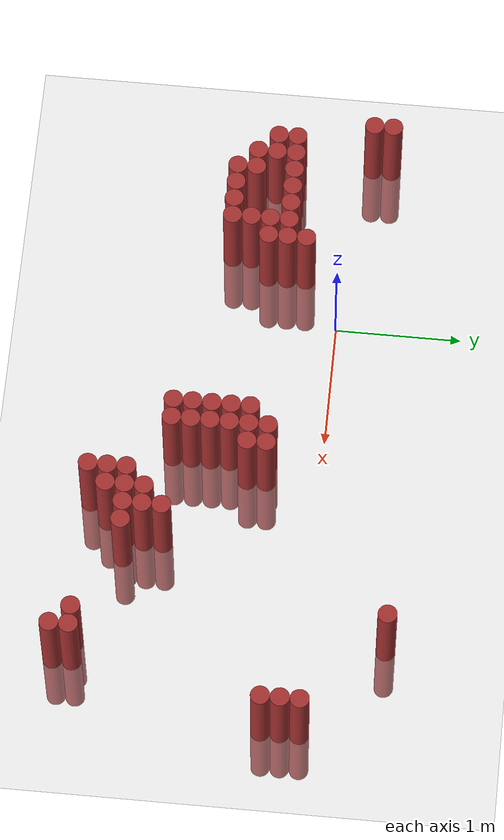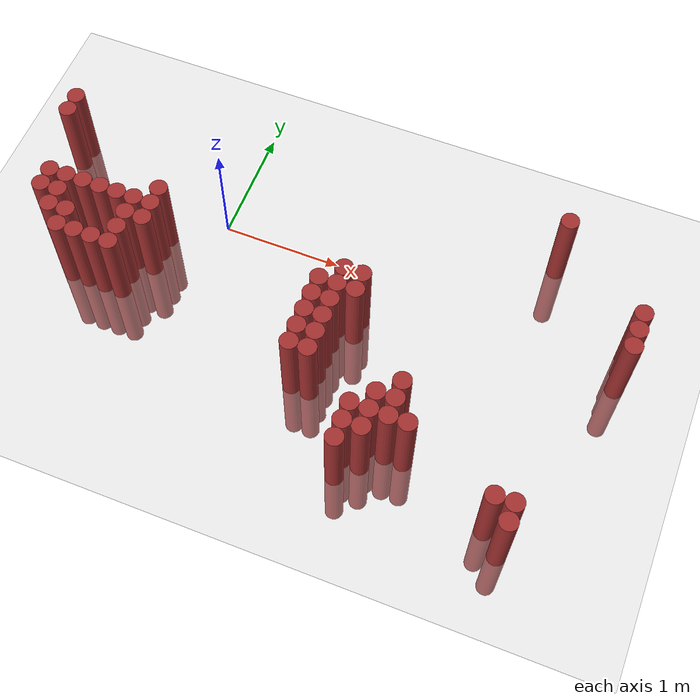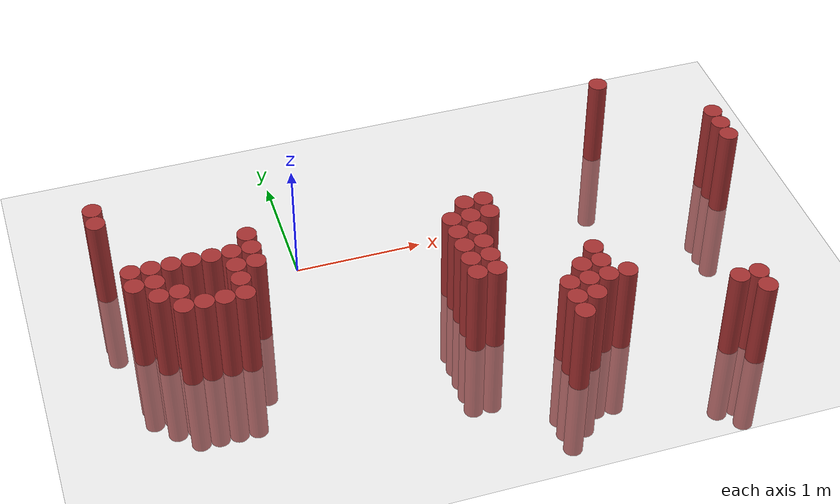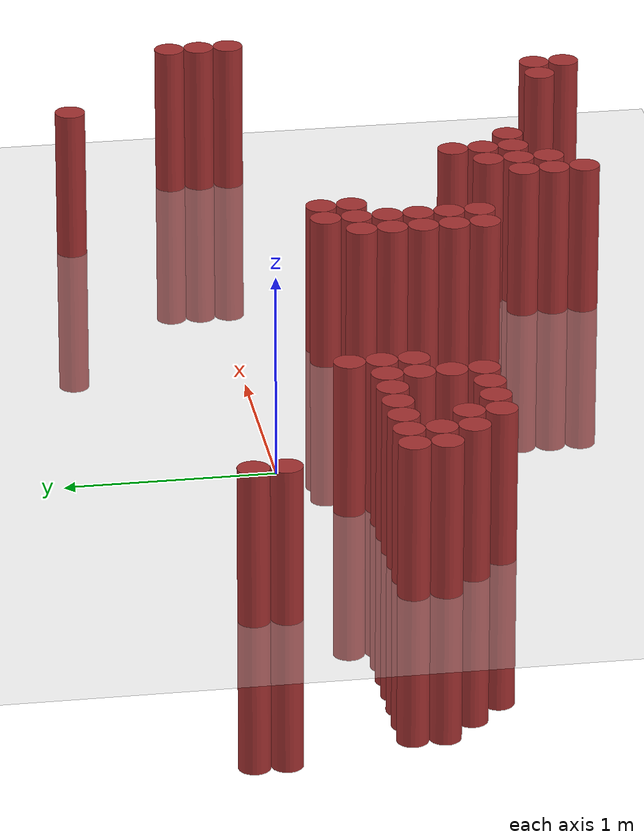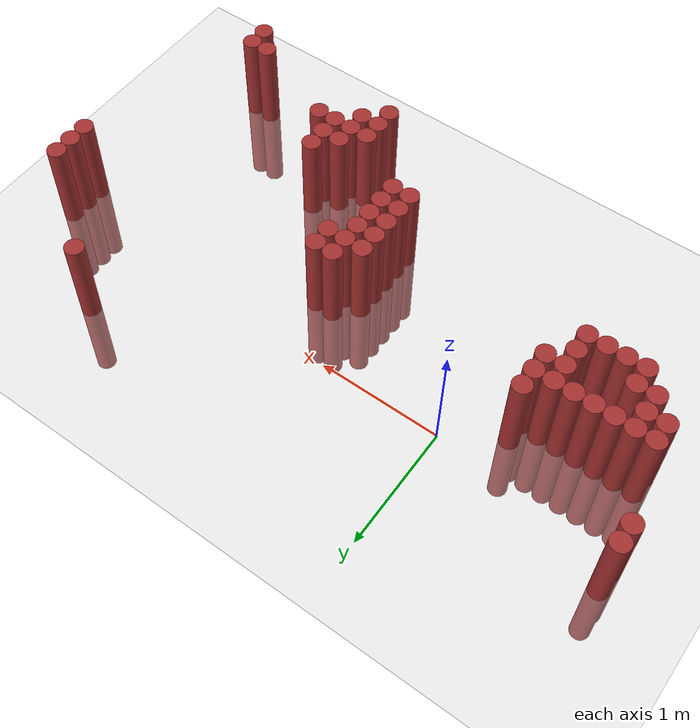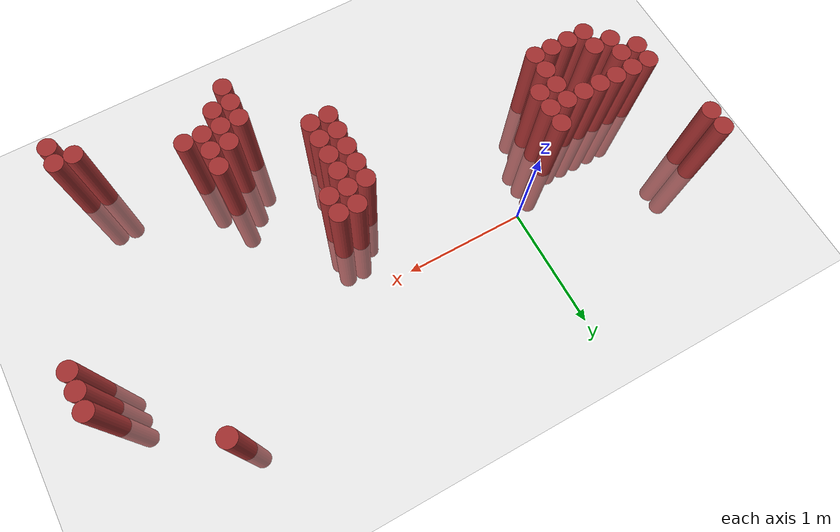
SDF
<sdf version="1.6">
 <world name="default">
  <model name="ground_plane">
   <static>1</static>
   <link name="link">
    <collision name="collision">
     <geometry><plane><normal>0 0 1</normal><size>100 100</size></plane></geometry>
     <surface><friction><ode><mu>100</mu><mu2>50</mu2></ode></friction></surface>
    </collision>
    <visual name="visual">
     <cast_shadows>0</cast_shadows>
     <geometry><plane><normal>0 0 1</normal><size>100 100</size></plane></geometry>
     <material>
      <script><uri>file://media/materials/scripts/gazebo.material</uri><name>Gazebo/Grey</name></script>
     </material>
    </visual>
   </link>
  </model>
  <model name="unit_cylinder_332">
   <static>1</static>
   <pose>-1.475000 0.175000 0.000000 0.000000 0.000000 0.000000</pose>
   <link name="link">
    <inertial>
     <mass>1</mass>
     <inertia><ixx>0.145833</ixx><ixy>0</ixy><ixz>0</ixz><iyy>0.145833</iyy><iyz>0</iyz><izz>0.125</izz></inertia>
    </inertial>
    <collision name="collision">
     <geometry><cylinder><radius>0.075000</radius><length>1.5</length></cylinder></geometry>
    </collision>
    <visual name="visual">
     <geometry><cylinder><radius>0.075000</radius><length>1.5</length></cylinder></geometry>
     <material>
      <ambient>0.648000 0.192000 0.192000 1</ambient>
      <diffuse>0.648000 0.192000 0.192000 1</diffuse>
     </material>
     <material>
      <script><name>Gazebo/Grey</name><uri>file://media/materials/scripts/gazebo.material</uri></script>
     </material>
    </visual>
   </link>
  </model>
  <model name="unit_cylinder_333">
   <static>1</static>
   <pose>-1.475000 0.325000 0.000000 0.000000 0.000000 0.000000</pose>
   <link name="link">
    <inertial>
     <mass>1</mass>
     <inertia><ixx>0.145833</ixx><ixy>0</ixy><ixz>0</ixz><iyy>0.145833</iyy><iyz>0</iyz><izz>0.125</izz></inertia>
    </inertial>
    <collision name="collision">
     <geometry><cylinder><radius>0.075000</radius><length>1.5</length></cylinder></geometry>
    </collision>
    <visual name="visual">
     <geometry><cylinder><radius>0.075000</radius><length>1.5</length></cylinder></geometry>
     <material>
      <ambient>0.648000 0.192000 0.192000 1</ambient>
      <diffuse>0.648000 0.192000 0.192000 1</diffuse>
     </material>
     <material>
      <script><name>Gazebo/Grey</name><uri>file://media/materials/scripts/gazebo.material</uri></script>
     </material>
    </visual>
   </link>
  </model>
  <model name="unit_cylinder_335">
   <static>1</static>
   <pose>-1.325000 -0.575000 0.000000 0.000000 0.000000 0.000000</pose>
   <link name="link">
    <inertial>
     <mass>1</mass>
     <inertia><ixx>0.145833</ixx><ixy>0</ixy><ixz>0</ixz><iyy>0.145833</iyy><iyz>0</iyz><izz>0.125</izz></inertia>
    </inertial>
    <collision name="collision">
     <geometry><cylinder><radius>0.075000</radius><length>1.5</length></cylinder></geometry>
    </collision>
    <visual name="visual">
     <geometry><cylinder><radius>0.075000</radius><length>1.5</length></cylinder></geometry>
     <material>
      <ambient>0.648000 0.192000 0.192000 1</ambient>
      <diffuse>0.648000 0.192000 0.192000 1</diffuse>
     </material>
     <material>
      <script><name>Gazebo/Grey</name><uri>file://media/materials/scripts/gazebo.material</uri></script>
     </material>
    </visual>
   </link>
  </model>
  <model name="unit_cylinder_336">
   <static>1</static>
   <pose>-1.325000 -0.425000 0.000000 0.000000 0.000000 0.000000</pose>
   <link name="link">
    <inertial>
     <mass>1</mass>
     <inertia><ixx>0.145833</ixx><ixy>0</ixy><ixz>0</ixz><iyy>0.145833</iyy><iyz>0</iyz><izz>0.125</izz></inertia>
    </inertial>
    <collision name="collision">
     <geometry><cylinder><radius>0.075000</radius><length>1.5</length></cylinder></geometry>
    </collision>
    <visual name="visual">
     <geometry><cylinder><radius>0.075000</radius><length>1.5</length></cylinder></geometry>
     <material>
      <ambient>0.648000 0.192000 0.192000 1</ambient>
      <diffuse>0.648000 0.192000 0.192000 1</diffuse>
     </material>
     <material>
      <script><name>Gazebo/Grey</name><uri>file://media/materials/scripts/gazebo.material</uri></script>
     </material>
    </visual>
   </link>
  </model>
  <model name="unit_cylinder_337">
   <static>1</static>
   <pose>-1.175000 -0.725000 0.000000 0.000000 0.000000 0.000000</pose>
   <link name="link">
    <inertial>
     <mass>1</mass>
     <inertia><ixx>0.145833</ixx><ixy>0</ixy><ixz>0</ixz><iyy>0.145833</iyy><iyz>0</iyz><izz>0.125</izz></inertia>
    </inertial>
    <collision name="collision">
     <geometry><cylinder><radius>0.075000</radius><length>1.5</length></cylinder></geometry>
    </collision>
    <visual name="visual">
     <geometry><cylinder><radius>0.075000</radius><length>1.5</length></cylinder></geometry>
     <material>
      <ambient>0.648000 0.192000 0.192000 1</ambient>
      <diffuse>0.648000 0.192000 0.192000 1</diffuse>
     </material>
     <material>
      <script><name>Gazebo/Grey</name><uri>file://media/materials/scripts/gazebo.material</uri></script>
     </material>
    </visual>
   </link>
  </model>
  <model name="unit_cylinder_338">
   <static>1</static>
   <pose>-1.175000 -0.575000 0.000000 0.000000 0.000000 0.000000</pose>
   <link name="link">
    <inertial>
     <mass>1</mass>
     <inertia><ixx>0.145833</ixx><ixy>0</ixy><ixz>0</ixz><iyy>0.145833</iyy><iyz>0</iyz><izz>0.125</izz></inertia>
    </inertial>
    <collision name="collision">
     <geometry><cylinder><radius>0.075000</radius><length>1.5</length></cylinder></geometry>
    </collision>
    <visual name="visual">
     <geometry><cylinder><radius>0.075000</radius><length>1.5</length></cylinder></geometry>
     <material>
      <ambient>0.648000 0.192000 0.192000 1</ambient>
      <diffuse>0.648000 0.192000 0.192000 1</diffuse>
     </material>
     <material>
      <script><name>Gazebo/Grey</name><uri>file://media/materials/scripts/gazebo.material</uri></script>
     </material>
    </visual>
   </link>
  </model>
  <model name="unit_cylinder_339">
   <static>1</static>
   <pose>-1.175000 -0.425000 0.000000 0.000000 0.000000 0.000000</pose>
   <link name="link">
    <inertial>
     <mass>1</mass>
     <inertia><ixx>0.145833</ixx><ixy>0</ixy><ixz>0</ixz><iyy>0.145833</iyy><iyz>0</iyz><izz>0.125</izz></inertia>
    </inertial>
    <collision name="collision">
     <geometry><cylinder><radius>0.075000</radius><length>1.5</length></cylinder></geometry>
    </collision>
    <visual name="visual">
     <geometry><cylinder><radius>0.075000</radius><length>1.5</length></cylinder></geometry>
     <material>
      <ambient>0.648000 0.192000 0.192000 1</ambient>
      <diffuse>0.648000 0.192000 0.192000 1</diffuse>
     </material>
     <material>
      <script><name>Gazebo/Grey</name><uri>file://media/materials/scripts/gazebo.material</uri></script>
     </material>
    </visual>
   </link>
  </model>
  <model name="unit_cylinder_340">
   <static>1</static>
   <pose>-1.025000 -0.875000 0.000000 0.000000 0.000000 0.000000</pose>
   <link name="link">
    <inertial>
     <mass>1</mass>
     <inertia><ixx>0.145833</ixx><ixy>0</ixy><ixz>0</ixz><iyy>0.145833</iyy><iyz>0</iyz><izz>0.125</izz></inertia>
    </inertial>
    <collision name="collision">
     <geometry><cylinder><radius>0.075000</radius><length>1.5</length></cylinder></geometry>
    </collision>
    <visual name="visual">
     <geometry><cylinder><radius>0.075000</radius><length>1.5</length></cylinder></geometry>
     <material>
      <ambient>0.648000 0.192000 0.192000 1</ambient>
      <diffuse>0.648000 0.192000 0.192000 1</diffuse>
     </material>
     <material>
      <script><name>Gazebo/Grey</name><uri>file://media/materials/scripts/gazebo.material</uri></script>
     </material>
    </visual>
   </link>
  </model>
  <model name="unit_cylinder_341">
   <static>1</static>
   <pose>-1.025000 -0.725000 0.000000 0.000000 0.000000 0.000000</pose>
   <link name="link">
    <inertial>
     <mass>1</mass>
     <inertia><ixx>0.145833</ixx><ixy>0</ixy><ixz>0</ixz><iyy>0.145833</iyy><iyz>0</iyz><izz>0.125</izz></inertia>
    </inertial>
    <collision name="collision">
     <geometry><cylinder><radius>0.075000</radius><length>1.5</length></cylinder></geometry>
    </collision>
    <visual name="visual">
     <geometry><cylinder><radius>0.075000</radius><length>1.5</length></cylinder></geometry>
     <material>
      <ambient>0.648000 0.192000 0.192000 1</ambient>
      <diffuse>0.648000 0.192000 0.192000 1</diffuse>
     </material>
     <material>
      <script><name>Gazebo/Grey</name><uri>file://media/materials/scripts/gazebo.material</uri></script>
     </material>
    </visual>
   </link>
  </model>
  <model name="unit_cylinder_342">
   <static>1</static>
   <pose>-1.025000 -0.425000 0.000000 0.000000 0.000000 0.000000</pose>
   <link name="link">
    <inertial>
     <mass>1</mass>
     <inertia><ixx>0.145833</ixx><ixy>0</ixy><ixz>0</ixz><iyy>0.145833</iyy><iyz>0</iyz><izz>0.125</izz></inertia>
    </inertial>
    <collision name="collision">
     <geometry><cylinder><radius>0.075000</radius><length>1.5</length></cylinder></geometry>
    </collision>
    <visual name="visual">
     <geometry><cylinder><radius>0.075000</radius><length>1.5</length></cylinder></geometry>
     <material>
      <ambient>0.648000 0.192000 0.192000 1</ambient>
      <diffuse>0.648000 0.192000 0.192000 1</diffuse>
     </material>
     <material>
      <script><name>Gazebo/Grey</name><uri>file://media/materials/scripts/gazebo.material</uri></script>
     </material>
    </visual>
   </link>
  </model>
  <model name="unit_cylinder_343">
   <static>1</static>
   <pose>-0.875000 -0.875000 0.000000 0.000000 0.000000 0.000000</pose>
   <link name="link">
    <inertial>
     <mass>1</mass>
     <inertia><ixx>0.145833</ixx><ixy>0</ixy><ixz>0</ixz><iyy>0.145833</iyy><iyz>0</iyz><izz>0.125</izz></inertia>
    </inertial>
    <collision name="collision">
     <geometry><cylinder><radius>0.075000</radius><length>1.5</length></cylinder></geometry>
    </collision>
    <visual name="visual">
     <geometry><cylinder><radius>0.075000</radius><length>1.5</length></cylinder></geometry>
     <material>
      <ambient>0.648000 0.192000 0.192000 1</ambient>
      <diffuse>0.648000 0.192000 0.192000 1</diffuse>
     </material>
     <material>
      <script><name>Gazebo/Grey</name><uri>file://media/materials/scripts/gazebo.material</uri></script>
     </material>
    </visual>
   </link>
  </model>
  <model name="unit_cylinder_344">
   <static>1</static>
   <pose>-0.875000 -0.425000 0.000000 0.000000 0.000000 0.000000</pose>
   <link name="link">
    <inertial>
     <mass>1</mass>
     <inertia><ixx>0.145833</ixx><ixy>0</ixy><ixz>0</ixz><iyy>0.145833</iyy><iyz>0</iyz><izz>0.125</izz></inertia>
    </inertial>
    <collision name="collision">
     <geometry><cylinder><radius>0.075000</radius><length>1.5</length></cylinder></geometry>
    </collision>
    <visual name="visual">
     <geometry><cylinder><radius>0.075000</radius><length>1.5</length></cylinder></geometry>
     <material>
      <ambient>0.648000 0.192000 0.192000 1</ambient>
      <diffuse>0.648000 0.192000 0.192000 1</diffuse>
     </material>
     <material>
      <script><name>Gazebo/Grey</name><uri>file://media/materials/scripts/gazebo.material</uri></script>
     </material>
    </visual>
   </link>
  </model>
  <model name="unit_cylinder_345">
   <static>1</static>
   <pose>-0.725000 -0.875000 0.000000 0.000000 0.000000 0.000000</pose>
   <link name="link">
    <inertial>
     <mass>1</mass>
     <inertia><ixx>0.145833</ixx><ixy>0</ixy><ixz>0</ixz><iyy>0.145833</iyy><iyz>0</iyz><izz>0.125</izz></inertia>
    </inertial>
    <collision name="collision">
     <geometry><cylinder><radius>0.075000</radius><length>1.5</length></cylinder></geometry>
    </collision>
    <visual name="visual">
     <geometry><cylinder><radius>0.075000</radius><length>1.5</length></cylinder></geometry>
     <material>
      <ambient>0.648000 0.192000 0.192000 1</ambient>
      <diffuse>0.648000 0.192000 0.192000 1</diffuse>
     </material>
     <material>
      <script><name>Gazebo/Grey</name><uri>file://media/materials/scripts/gazebo.material</uri></script>
     </material>
    </visual>
   </link>
  </model>
  <model name="unit_cylinder_346">
   <static>1</static>
   <pose>-0.725000 -0.425000 0.000000 0.000000 0.000000 0.000000</pose>
   <link name="link">
    <inertial>
     <mass>1</mass>
     <inertia><ixx>0.145833</ixx><ixy>0</ixy><ixz>0</ixz><iyy>0.145833</iyy><iyz>0</iyz><izz>0.125</izz></inertia>
    </inertial>
    <collision name="collision">
     <geometry><cylinder><radius>0.075000</radius><length>1.5</length></cylinder></geometry>
    </collision>
    <visual name="visual">
     <geometry><cylinder><radius>0.075000</radius><length>1.5</length></cylinder></geometry>
     <material>
      <ambient>0.648000 0.192000 0.192000 1</ambient>
      <diffuse>0.648000 0.192000 0.192000 1</diffuse>
     </material>
     <material>
      <script><name>Gazebo/Grey</name><uri>file://media/materials/scripts/gazebo.material</uri></script>
     </material>
    </visual>
   </link>
  </model>
  <model name="unit_cylinder_347">
   <static>1</static>
   <pose>-0.575000 -0.875000 0.000000 0.000000 0.000000 0.000000</pose>
   <link name="link">
    <inertial>
     <mass>1</mass>
     <inertia><ixx>0.145833</ixx><ixy>0</ixy><ixz>0</ixz><iyy>0.145833</iyy><iyz>0</iyz><izz>0.125</izz></inertia>
    </inertial>
    <collision name="collision">
     <geometry><cylinder><radius>0.075000</radius><length>1.5</length></cylinder></geometry>
    </collision>
    <visual name="visual">
     <geometry><cylinder><radius>0.075000</radius><length>1.5</length></cylinder></geometry>
     <material>
      <ambient>0.648000 0.192000 0.192000 1</ambient>
      <diffuse>0.648000 0.192000 0.192000 1</diffuse>
     </material>
     <material>
      <script><name>Gazebo/Grey</name><uri>file://media/materials/scripts/gazebo.material</uri></script>
     </material>
    </visual>
   </link>
  </model>
  <model name="unit_cylinder_348">
   <static>1</static>
   <pose>-0.575000 -0.725000 0.000000 0.000000 0.000000 0.000000</pose>
   <link name="link">
    <inertial>
     <mass>1</mass>
     <inertia><ixx>0.145833</ixx><ixy>0</ixy><ixz>0</ixz><iyy>0.145833</iyy><iyz>0</iyz><izz>0.125</izz></inertia>
    </inertial>
    <collision name="collision">
     <geometry><cylinder><radius>0.075000</radius><length>1.5</length></cylinder></geometry>
    </collision>
    <visual name="visual">
     <geometry><cylinder><radius>0.075000</radius><length>1.5</length></cylinder></geometry>
     <material>
      <ambient>0.648000 0.192000 0.192000 1</ambient>
      <diffuse>0.648000 0.192000 0.192000 1</diffuse>
     </material>
     <material>
      <script><name>Gazebo/Grey</name><uri>file://media/materials/scripts/gazebo.material</uri></script>
     </material>
    </visual>
   </link>
  </model>
  <model name="unit_cylinder_349">
   <static>1</static>
   <pose>-0.575000 -0.575000 0.000000 0.000000 0.000000 0.000000</pose>
   <link name="link">
    <inertial>
     <mass>1</mass>
     <inertia><ixx>0.145833</ixx><ixy>0</ixy><ixz>0</ixz><iyy>0.145833</iyy><iyz>0</iyz><izz>0.125</izz></inertia>
    </inertial>
    <collision name="collision">
     <geometry><cylinder><radius>0.075000</radius><length>1.5</length></cylinder></geometry>
    </collision>
    <visual name="visual">
     <geometry><cylinder><radius>0.075000</radius><length>1.5</length></cylinder></geometry>
     <material>
      <ambient>0.648000 0.192000 0.192000 1</ambient>
      <diffuse>0.648000 0.192000 0.192000 1</diffuse>
     </material>
     <material>
      <script><name>Gazebo/Grey</name><uri>file://media/materials/scripts/gazebo.material</uri></script>
     </material>
    </visual>
   </link>
  </model>
  <model name="unit_cylinder_350">
   <static>1</static>
   <pose>-0.575000 -0.425000 0.000000 0.000000 0.000000 0.000000</pose>
   <link name="link">
    <inertial>
     <mass>1</mass>
     <inertia><ixx>0.145833</ixx><ixy>0</ixy><ixz>0</ixz><iyy>0.145833</iyy><iyz>0</iyz><izz>0.125</izz></inertia>
    </inertial>
    <collision name="collision">
     <geometry><cylinder><radius>0.075000</radius><length>1.5</length></cylinder></geometry>
    </collision>
    <visual name="visual">
     <geometry><cylinder><radius>0.075000</radius><length>1.5</length></cylinder></geometry>
     <material>
      <ambient>0.648000 0.192000 0.192000 1</ambient>
      <diffuse>0.648000 0.192000 0.192000 1</diffuse>
     </material>
     <material>
      <script><name>Gazebo/Grey</name><uri>file://media/materials/scripts/gazebo.material</uri></script>
     </material>
    </visual>
   </link>
  </model>
  <model name="unit_cylinder_351">
   <static>1</static>
   <pose>-0.425000 -0.575000 0.000000 0.000000 0.000000 0.000000</pose>
   <link name="link">
    <inertial>
     <mass>1</mass>
     <inertia><ixx>0.145833</ixx><ixy>0</ixy><ixz>0</ixz><iyy>0.145833</iyy><iyz>0</iyz><izz>0.125</izz></inertia>
    </inertial>
    <collision name="collision">
     <geometry><cylinder><radius>0.075000</radius><length>1.5</length></cylinder></geometry>
    </collision>
    <visual name="visual">
     <geometry><cylinder><radius>0.075000</radius><length>1.5</length></cylinder></geometry>
     <material>
      <ambient>0.648000 0.192000 0.192000 1</ambient>
      <diffuse>0.648000 0.192000 0.192000 1</diffuse>
     </material>
     <material>
      <script><name>Gazebo/Grey</name><uri>file://media/materials/scripts/gazebo.material</uri></script>
     </material>
    </visual>
   </link>
  </model>
  <model name="unit_cylinder_352">
   <static>1</static>
   <pose>-0.425000 -0.425000 0.000000 0.000000 0.000000 0.000000</pose>
   <link name="link">
    <inertial>
     <mass>1</mass>
     <inertia><ixx>0.145833</ixx><ixy>0</ixy><ixz>0</ixz><iyy>0.145833</iyy><iyz>0</iyz><izz>0.125</izz></inertia>
    </inertial>
    <collision name="collision">
     <geometry><cylinder><radius>0.075000</radius><length>1.5</length></cylinder></geometry>
    </collision>
    <visual name="visual">
     <geometry><cylinder><radius>0.075000</radius><length>1.5</length></cylinder></geometry>
     <material>
      <ambient>0.648000 0.192000 0.192000 1</ambient>
      <diffuse>0.648000 0.192000 0.192000 1</diffuse>
     </material>
     <material>
      <script><name>Gazebo/Grey</name><uri>file://media/materials/scripts/gazebo.material</uri></script>
     </material>
    </visual>
   </link>
  </model>
  <model name="unit_cylinder_353">
   <static>1</static>
   <pose>-0.425000 -0.275000 0.000000 0.000000 0.000000 0.000000</pose>
   <link name="link">
    <inertial>
     <mass>1</mass>
     <inertia><ixx>0.145833</ixx><ixy>0</ixy><ixz>0</ixz><iyy>0.145833</iyy><iyz>0</iyz><izz>0.125</izz></inertia>
    </inertial>
    <collision name="collision">
     <geometry><cylinder><radius>0.075000</radius><length>1.5</length></cylinder></geometry>
    </collision>
    <visual name="visual">
     <geometry><cylinder><radius>0.075000</radius><length>1.5</length></cylinder></geometry>
     <material>
      <ambient>0.648000 0.192000 0.192000 1</ambient>
      <diffuse>0.648000 0.192000 0.192000 1</diffuse>
     </material>
     <material>
      <script><name>Gazebo/Grey</name><uri>file://media/materials/scripts/gazebo.material</uri></script>
     </material>
    </visual>
   </link>
  </model>
  <model name="unit_cylinder_361">
   <static>1</static>
   <pose>1.075000 -1.175000 0.000000 0.000000 0.000000 0.000000</pose>
   <link name="link">
    <inertial>
     <mass>1</mass>
     <inertia><ixx>0.145833</ixx><ixy>0</ixy><ixz>0</ixz><iyy>0.145833</iyy><iyz>0</iyz><izz>0.125</izz></inertia>
    </inertial>
    <collision name="collision">
     <geometry><cylinder><radius>0.075000</radius><length>1.5</length></cylinder></geometry>
    </collision>
    <visual name="visual">
     <geometry><cylinder><radius>0.075000</radius><length>1.5</length></cylinder></geometry>
     <material>
      <ambient>0.648000 0.192000 0.192000 1</ambient>
      <diffuse>0.648000 0.192000 0.192000 1</diffuse>
     </material>
     <material>
      <script><name>Gazebo/Grey</name><uri>file://media/materials/scripts/gazebo.material</uri></script>
     </material>
    </visual>
   </link>
  </model>
  <model name="unit_cylinder_362">
   <static>1</static>
   <pose>1.075000 -1.025000 0.000000 0.000000 0.000000 0.000000</pose>
   <link name="link">
    <inertial>
     <mass>1</mass>
     <inertia><ixx>0.145833</ixx><ixy>0</ixy><ixz>0</ixz><iyy>0.145833</iyy><iyz>0</iyz><izz>0.125</izz></inertia>
    </inertial>
    <collision name="collision">
     <geometry><cylinder><radius>0.075000</radius><length>1.5</length></cylinder></geometry>
    </collision>
    <visual name="visual">
     <geometry><cylinder><radius>0.075000</radius><length>1.5</length></cylinder></geometry>
     <material>
      <ambient>0.648000 0.192000 0.192000 1</ambient>
      <diffuse>0.648000 0.192000 0.192000 1</diffuse>
     </material>
     <material>
      <script><name>Gazebo/Grey</name><uri>file://media/materials/scripts/gazebo.material</uri></script>
     </material>
    </visual>
   </link>
  </model>
  <model name="unit_cylinder_363">
   <static>1</static>
   <pose>1.075000 -0.875000 0.000000 0.000000 0.000000 0.000000</pose>
   <link name="link">
    <inertial>
     <mass>1</mass>
     <inertia><ixx>0.145833</ixx><ixy>0</ixy><ixz>0</ixz><iyy>0.145833</iyy><iyz>0</iyz><izz>0.125</izz></inertia>
    </inertial>
    <collision name="collision">
     <geometry><cylinder><radius>0.075000</radius><length>1.5</length></cylinder></geometry>
    </collision>
    <visual name="visual">
     <geometry><cylinder><radius>0.075000</radius><length>1.5</length></cylinder></geometry>
     <material>
      <ambient>0.648000 0.192000 0.192000 1</ambient>
      <diffuse>0.648000 0.192000 0.192000 1</diffuse>
     </material>
     <material>
      <script><name>Gazebo/Grey</name><uri>file://media/materials/scripts/gazebo.material</uri></script>
     </material>
    </visual>
   </link>
  </model>
  <model name="unit_cylinder_364">
   <static>1</static>
   <pose>1.075000 -0.725000 0.000000 0.000000 0.000000 0.000000</pose>
   <link name="link">
    <inertial>
     <mass>1</mass>
     <inertia><ixx>0.145833</ixx><ixy>0</ixy><ixz>0</ixz><iyy>0.145833</iyy><iyz>0</iyz><izz>0.125</izz></inertia>
    </inertial>
    <collision name="collision">
     <geometry><cylinder><radius>0.075000</radius><length>1.5</length></cylinder></geometry>
    </collision>
    <visual name="visual">
     <geometry><cylinder><radius>0.075000</radius><length>1.5</length></cylinder></geometry>
     <material>
      <ambient>0.648000 0.192000 0.192000 1</ambient>
      <diffuse>0.648000 0.192000 0.192000 1</diffuse>
     </material>
     <material>
      <script><name>Gazebo/Grey</name><uri>file://media/materials/scripts/gazebo.material</uri></script>
     </material>
    </visual>
   </link>
  </model>
  <model name="unit_cylinder_365">
   <static>1</static>
   <pose>1.075000 -0.575000 0.000000 0.000000 0.000000 0.000000</pose>
   <link name="link">
    <inertial>
     <mass>1</mass>
     <inertia><ixx>0.145833</ixx><ixy>0</ixy><ixz>0</ixz><iyy>0.145833</iyy><iyz>0</iyz><izz>0.125</izz></inertia>
    </inertial>
    <collision name="collision">
     <geometry><cylinder><radius>0.075000</radius><length>1.5</length></cylinder></geometry>
    </collision>
    <visual name="visual">
     <geometry><cylinder><radius>0.075000</radius><length>1.5</length></cylinder></geometry>
     <material>
      <ambient>0.648000 0.192000 0.192000 1</ambient>
      <diffuse>0.648000 0.192000 0.192000 1</diffuse>
     </material>
     <material>
      <script><name>Gazebo/Grey</name><uri>file://media/materials/scripts/gazebo.material</uri></script>
     </material>
    </visual>
   </link>
  </model>
  <model name="unit_cylinder_369">
   <static>1</static>
   <pose>1.225000 -1.175000 0.000000 0.000000 0.000000 0.000000</pose>
   <link name="link">
    <inertial>
     <mass>1</mass>
     <inertia><ixx>0.145833</ixx><ixy>0</ixy><ixz>0</ixz><iyy>0.145833</iyy><iyz>0</iyz><izz>0.125</izz></inertia>
    </inertial>
    <collision name="collision">
     <geometry><cylinder><radius>0.075000</radius><length>1.5</length></cylinder></geometry>
    </collision>
    <visual name="visual">
     <geometry><cylinder><radius>0.075000</radius><length>1.5</length></cylinder></geometry>
     <material>
      <ambient>0.648000 0.192000 0.192000 1</ambient>
      <diffuse>0.648000 0.192000 0.192000 1</diffuse>
     </material>
     <material>
      <script><name>Gazebo/Grey</name><uri>file://media/materials/scripts/gazebo.material</uri></script>
     </material>
    </visual>
   </link>
  </model>
  <model name="unit_cylinder_370">
   <static>1</static>
   <pose>1.225000 -1.025000 0.000000 0.000000 0.000000 0.000000</pose>
   <link name="link">
    <inertial>
     <mass>1</mass>
     <inertia><ixx>0.145833</ixx><ixy>0</ixy><ixz>0</ixz><iyy>0.145833</iyy><iyz>0</iyz><izz>0.125</izz></inertia>
    </inertial>
    <collision name="collision">
     <geometry><cylinder><radius>0.075000</radius><length>1.5</length></cylinder></geometry>
    </collision>
    <visual name="visual">
     <geometry><cylinder><radius>0.075000</radius><length>1.5</length></cylinder></geometry>
     <material>
      <ambient>0.648000 0.192000 0.192000 1</ambient>
      <diffuse>0.648000 0.192000 0.192000 1</diffuse>
     </material>
     <material>
      <script><name>Gazebo/Grey</name><uri>file://media/materials/scripts/gazebo.material</uri></script>
     </material>
    </visual>
   </link>
  </model>
  <model name="unit_cylinder_371">
   <static>1</static>
   <pose>1.225000 -0.875000 0.000000 0.000000 0.000000 0.000000</pose>
   <link name="link">
    <inertial>
     <mass>1</mass>
     <inertia><ixx>0.145833</ixx><ixy>0</ixy><ixz>0</ixz><iyy>0.145833</iyy><iyz>0</iyz><izz>0.125</izz></inertia>
    </inertial>
    <collision name="collision">
     <geometry><cylinder><radius>0.075000</radius><length>1.5</length></cylinder></geometry>
    </collision>
    <visual name="visual">
     <geometry><cylinder><radius>0.075000</radius><length>1.5</length></cylinder></geometry>
     <material>
      <ambient>0.648000 0.192000 0.192000 1</ambient>
      <diffuse>0.648000 0.192000 0.192000 1</diffuse>
     </material>
     <material>
      <script><name>Gazebo/Grey</name><uri>file://media/materials/scripts/gazebo.material</uri></script>
     </material>
    </visual>
   </link>
  </model>
  <model name="unit_cylinder_372">
   <static>1</static>
   <pose>1.225000 -0.725000 0.000000 0.000000 0.000000 0.000000</pose>
   <link name="link">
    <inertial>
     <mass>1</mass>
     <inertia><ixx>0.145833</ixx><ixy>0</ixy><ixz>0</ixz><iyy>0.145833</iyy><iyz>0</iyz><izz>0.125</izz></inertia>
    </inertial>
    <collision name="collision">
     <geometry><cylinder><radius>0.075000</radius><length>1.5</length></cylinder></geometry>
    </collision>
    <visual name="visual">
     <geometry><cylinder><radius>0.075000</radius><length>1.5</length></cylinder></geometry>
     <material>
      <ambient>0.648000 0.192000 0.192000 1</ambient>
      <diffuse>0.648000 0.192000 0.192000 1</diffuse>
     </material>
     <material>
      <script><name>Gazebo/Grey</name><uri>file://media/materials/scripts/gazebo.material</uri></script>
     </material>
    </visual>
   </link>
  </model>
  <model name="unit_cylinder_373">
   <static>1</static>
   <pose>1.225000 -0.575000 0.000000 0.000000 0.000000 0.000000</pose>
   <link name="link">
    <inertial>
     <mass>1</mass>
     <inertia><ixx>0.145833</ixx><ixy>0</ixy><ixz>0</ixz><iyy>0.145833</iyy><iyz>0</iyz><izz>0.125</izz></inertia>
    </inertial>
    <collision name="collision">
     <geometry><cylinder><radius>0.075000</radius><length>1.5</length></cylinder></geometry>
    </collision>
    <visual name="visual">
     <geometry><cylinder><radius>0.075000</radius><length>1.5</length></cylinder></geometry>
     <material>
      <ambient>0.648000 0.192000 0.192000 1</ambient>
      <diffuse>0.648000 0.192000 0.192000 1</diffuse>
     </material>
     <material>
      <script><name>Gazebo/Grey</name><uri>file://media/materials/scripts/gazebo.material</uri></script>
     </material>
    </visual>
   </link>
  </model>
  <model name="unit_cylinder_374">
   <static>1</static>
   <pose>1.225000 -0.425000 0.000000 0.000000 0.000000 0.000000</pose>
   <link name="link">
    <inertial>
     <mass>1</mass>
     <inertia><ixx>0.145833</ixx><ixy>0</ixy><ixz>0</ixz><iyy>0.145833</iyy><iyz>0</iyz><izz>0.125</izz></inertia>
    </inertial>
    <collision name="collision">
     <geometry><cylinder><radius>0.075000</radius><length>1.5</length></cylinder></geometry>
    </collision>
    <visual name="visual">
     <geometry><cylinder><radius>0.075000</radius><length>1.5</length></cylinder></geometry>
     <material>
      <ambient>0.648000 0.192000 0.192000 1</ambient>
      <diffuse>0.648000 0.192000 0.192000 1</diffuse>
     </material>
     <material>
      <script><name>Gazebo/Grey</name><uri>file://media/materials/scripts/gazebo.material</uri></script>
     </material>
    </visual>
   </link>
  </model>
  <model name="unit_cylinder_379">
   <static>1</static>
   <pose>1.375000 -0.575000 0.000000 0.000000 0.000000 0.000000</pose>
   <link name="link">
    <inertial>
     <mass>1</mass>
     <inertia><ixx>0.145833</ixx><ixy>0</ixy><ixz>0</ixz><iyy>0.145833</iyy><iyz>0</iyz><izz>0.125</izz></inertia>
    </inertial>
    <collision name="collision">
     <geometry><cylinder><radius>0.075000</radius><length>1.5</length></cylinder></geometry>
    </collision>
    <visual name="visual">
     <geometry><cylinder><radius>0.075000</radius><length>1.5</length></cylinder></geometry>
     <material>
      <ambient>0.648000 0.192000 0.192000 1</ambient>
      <diffuse>0.648000 0.192000 0.192000 1</diffuse>
     </material>
     <material>
      <script><name>Gazebo/Grey</name><uri>file://media/materials/scripts/gazebo.material</uri></script>
     </material>
    </visual>
   </link>
  </model>
  <model name="unit_cylinder_380">
   <static>1</static>
   <pose>1.375000 -0.425000 0.000000 0.000000 0.000000 0.000000</pose>
   <link name="link">
    <inertial>
     <mass>1</mass>
     <inertia><ixx>0.145833</ixx><ixy>0</ixy><ixz>0</ixz><iyy>0.145833</iyy><iyz>0</iyz><izz>0.125</izz></inertia>
    </inertial>
    <collision name="collision">
     <geometry><cylinder><radius>0.075000</radius><length>1.5</length></cylinder></geometry>
    </collision>
    <visual name="visual">
     <geometry><cylinder><radius>0.075000</radius><length>1.5</length></cylinder></geometry>
     <material>
      <ambient>0.648000 0.192000 0.192000 1</ambient>
      <diffuse>0.648000 0.192000 0.192000 1</diffuse>
     </material>
     <material>
      <script><name>Gazebo/Grey</name><uri>file://media/materials/scripts/gazebo.material</uri></script>
     </material>
    </visual>
   </link>
  </model>
  <model name="unit_cylinder_387">
   <static>1</static>
   <pose>1.675000 -1.775000 0.000000 0.000000 0.000000 0.000000</pose>
   <link name="link">
    <inertial>
     <mass>1</mass>
     <inertia><ixx>0.145833</ixx><ixy>0</ixy><ixz>0</ixz><iyy>0.145833</iyy><iyz>0</iyz><izz>0.125</izz></inertia>
    </inertial>
    <collision name="collision">
     <geometry><cylinder><radius>0.075000</radius><length>1.5</length></cylinder></geometry>
    </collision>
    <visual name="visual">
     <geometry><cylinder><radius>0.075000</radius><length>1.5</length></cylinder></geometry>
     <material>
      <ambient>0.648000 0.192000 0.192000 1</ambient>
      <diffuse>0.648000 0.192000 0.192000 1</diffuse>
     </material>
     <material>
      <script><name>Gazebo/Grey</name><uri>file://media/materials/scripts/gazebo.material</uri></script>
     </material>
    </visual>
   </link>
  </model>
  <model name="unit_cylinder_388">
   <static>1</static>
   <pose>1.675000 -1.625000 0.000000 0.000000 0.000000 0.000000</pose>
   <link name="link">
    <inertial>
     <mass>1</mass>
     <inertia><ixx>0.145833</ixx><ixy>0</ixy><ixz>0</ixz><iyy>0.145833</iyy><iyz>0</iyz><izz>0.125</izz></inertia>
    </inertial>
    <collision name="collision">
     <geometry><cylinder><radius>0.075000</radius><length>1.5</length></cylinder></geometry>
    </collision>
    <visual name="visual">
     <geometry><cylinder><radius>0.075000</radius><length>1.5</length></cylinder></geometry>
     <material>
      <ambient>0.648000 0.192000 0.192000 1</ambient>
      <diffuse>0.648000 0.192000 0.192000 1</diffuse>
     </material>
     <material>
      <script><name>Gazebo/Grey</name><uri>file://media/materials/scripts/gazebo.material</uri></script>
     </material>
    </visual>
   </link>
  </model>
  <model name="unit_cylinder_389">
   <static>1</static>
   <pose>1.675000 -1.475000 0.000000 0.000000 0.000000 0.000000</pose>
   <link name="link">
    <inertial>
     <mass>1</mass>
     <inertia><ixx>0.145833</ixx><ixy>0</ixy><ixz>0</ixz><iyy>0.145833</iyy><iyz>0</iyz><izz>0.125</izz></inertia>
    </inertial>
    <collision name="collision">
     <geometry><cylinder><radius>0.075000</radius><length>1.5</length></cylinder></geometry>
    </collision>
    <visual name="visual">
     <geometry><cylinder><radius>0.075000</radius><length>1.5</length></cylinder></geometry>
     <material>
      <ambient>0.648000 0.192000 0.192000 1</ambient>
      <diffuse>0.648000 0.192000 0.192000 1</diffuse>
     </material>
     <material>
      <script><name>Gazebo/Grey</name><uri>file://media/materials/scripts/gazebo.material</uri></script>
     </material>
    </visual>
   </link>
  </model>
  <model name="unit_cylinder_397">
   <static>1</static>
   <pose>1.825000 -1.625000 0.000000 0.000000 0.000000 0.000000</pose>
   <link name="link">
    <inertial>
     <mass>1</mass>
     <inertia><ixx>0.145833</ixx><ixy>0</ixy><ixz>0</ixz><iyy>0.145833</iyy><iyz>0</iyz><izz>0.125</izz></inertia>
    </inertial>
    <collision name="collision">
     <geometry><cylinder><radius>0.075000</radius><length>1.5</length></cylinder></geometry>
    </collision>
    <visual name="visual">
     <geometry><cylinder><radius>0.075000</radius><length>1.5</length></cylinder></geometry>
     <material>
      <ambient>0.648000 0.192000 0.192000 1</ambient>
      <diffuse>0.648000 0.192000 0.192000 1</diffuse>
     </material>
     <material>
      <script><name>Gazebo/Grey</name><uri>file://media/materials/scripts/gazebo.material</uri></script>
     </material>
    </visual>
   </link>
  </model>
  <model name="unit_cylinder_398">
   <static>1</static>
   <pose>1.825000 -1.475000 0.000000 0.000000 0.000000 0.000000</pose>
   <link name="link">
    <inertial>
     <mass>1</mass>
     <inertia><ixx>0.145833</ixx><ixy>0</ixy><ixz>0</ixz><iyy>0.145833</iyy><iyz>0</iyz><izz>0.125</izz></inertia>
    </inertial>
    <collision name="collision">
     <geometry><cylinder><radius>0.075000</radius><length>1.5</length></cylinder></geometry>
    </collision>
    <visual name="visual">
     <geometry><cylinder><radius>0.075000</radius><length>1.5</length></cylinder></geometry>
     <material>
      <ambient>0.648000 0.192000 0.192000 1</ambient>
      <diffuse>0.648000 0.192000 0.192000 1</diffuse>
     </material>
     <material>
      <script><name>Gazebo/Grey</name><uri>file://media/materials/scripts/gazebo.material</uri></script>
     </material>
    </visual>
   </link>
  </model>
  <model name="unit_cylinder_399">
   <static>1</static>
   <pose>1.825000 -1.325000 0.000000 0.000000 0.000000 0.000000</pose>
   <link name="link">
    <inertial>
     <mass>1</mass>
     <inertia><ixx>0.145833</ixx><ixy>0</ixy><ixz>0</ixz><iyy>0.145833</iyy><iyz>0</iyz><izz>0.125</izz></inertia>
    </inertial>
    <collision name="collision">
     <geometry><cylinder><radius>0.075000</radius><length>1.5</length></cylinder></geometry>
    </collision>
    <visual name="visual">
     <geometry><cylinder><radius>0.075000</radius><length>1.5</length></cylinder></geometry>
     <material>
      <ambient>0.648000 0.192000 0.192000 1</ambient>
      <diffuse>0.648000 0.192000 0.192000 1</diffuse>
     </material>
     <material>
      <script><name>Gazebo/Grey</name><uri>file://media/materials/scripts/gazebo.material</uri></script>
     </material>
    </visual>
   </link>
  </model>
  <model name="unit_cylinder_406">
   <static>1</static>
   <pose>1.975000 -1.475000 0.000000 0.000000 0.000000 0.000000</pose>
   <link name="link">
    <inertial>
     <mass>1</mass>
     <inertia><ixx>0.145833</ixx><ixy>0</ixy><ixz>0</ixz><iyy>0.145833</iyy><iyz>0</iyz><izz>0.125</izz></inertia>
    </inertial>
    <collision name="collision">
     <geometry><cylinder><radius>0.075000</radius><length>1.5</length></cylinder></geometry>
    </collision>
    <visual name="visual">
     <geometry><cylinder><radius>0.075000</radius><length>1.5</length></cylinder></geometry>
     <material>
      <ambient>0.648000 0.192000 0.192000 1</ambient>
      <diffuse>0.648000 0.192000 0.192000 1</diffuse>
     </material>
     <material>
      <script><name>Gazebo/Grey</name><uri>file://media/materials/scripts/gazebo.material</uri></script>
     </material>
    </visual>
   </link>
  </model>
  <model name="unit_cylinder_407">
   <static>1</static>
   <pose>1.975000 -1.325000 0.000000 0.000000 0.000000 0.000000</pose>
   <link name="link">
    <inertial>
     <mass>1</mass>
     <inertia><ixx>0.145833</ixx><ixy>0</ixy><ixz>0</ixz><iyy>0.145833</iyy><iyz>0</iyz><izz>0.125</izz></inertia>
    </inertial>
    <collision name="collision">
     <geometry><cylinder><radius>0.075000</radius><length>1.5</length></cylinder></geometry>
    </collision>
    <visual name="visual">
     <geometry><cylinder><radius>0.075000</radius><length>1.5</length></cylinder></geometry>
     <material>
      <ambient>0.648000 0.192000 0.192000 1</ambient>
      <diffuse>0.648000 0.192000 0.192000 1</diffuse>
     </material>
     <material>
      <script><name>Gazebo/Grey</name><uri>file://media/materials/scripts/gazebo.material</uri></script>
     </material>
    </visual>
   </link>
  </model>
  <model name="unit_cylinder_408">
   <static>1</static>
   <pose>1.975000 -1.175000 0.000000 0.000000 0.000000 0.000000</pose>
   <link name="link">
    <inertial>
     <mass>1</mass>
     <inertia><ixx>0.145833</ixx><ixy>0</ixy><ixz>0</ixz><iyy>0.145833</iyy><iyz>0</iyz><izz>0.125</izz></inertia>
    </inertial>
    <collision name="collision">
     <geometry><cylinder><radius>0.075000</radius><length>1.5</length></cylinder></geometry>
    </collision>
    <visual name="visual">
     <geometry><cylinder><radius>0.075000</radius><length>1.5</length></cylinder></geometry>
     <material>
      <ambient>0.648000 0.192000 0.192000 1</ambient>
      <diffuse>0.648000 0.192000 0.192000 1</diffuse>
     </material>
     <material>
      <script><name>Gazebo/Grey</name><uri>file://media/materials/scripts/gazebo.material</uri></script>
     </material>
    </visual>
   </link>
  </model>
  <model name="unit_cylinder_414">
   <static>1</static>
   <pose>2.125000 -1.475000 0.000000 0.000000 0.000000 0.000000</pose>
   <link name="link">
    <inertial>
     <mass>1</mass>
     <inertia><ixx>0.145833</ixx><ixy>0</ixy><ixz>0</ixz><iyy>0.145833</iyy><iyz>0</iyz><izz>0.125</izz></inertia>
    </inertial>
    <collision name="collision">
     <geometry><cylinder><radius>0.075000</radius><length>1.5</length></cylinder></geometry>
    </collision>
    <visual name="visual">
     <geometry><cylinder><radius>0.075000</radius><length>1.5</length></cylinder></geometry>
     <material>
      <ambient>0.648000 0.192000 0.192000 1</ambient>
      <diffuse>0.648000 0.192000 0.192000 1</diffuse>
     </material>
     <material>
      <script><name>Gazebo/Grey</name><uri>file://media/materials/scripts/gazebo.material</uri></script>
     </material>
    </visual>
   </link>
  </model>
  <model name="unit_cylinder_439">
   <static>1</static>
   <pose>2.725000 0.625000 0.000000 0.000000 0.000000 0.000000</pose>
   <link name="link">
    <inertial>
     <mass>1</mass>
     <inertia><ixx>0.145833</ixx><ixy>0</ixy><ixz>0</ixz><iyy>0.145833</iyy><iyz>0</iyz><izz>0.125</izz></inertia>
    </inertial>
    <collision name="collision">
     <geometry><cylinder><radius>0.075000</radius><length>1.5</length></cylinder></geometry>
    </collision>
    <visual name="visual">
     <geometry><cylinder><radius>0.075000</radius><length>1.5</length></cylinder></geometry>
     <material>
      <ambient>0.648000 0.192000 0.192000 1</ambient>
      <diffuse>0.648000 0.192000 0.192000 1</diffuse>
     </material>
     <material>
      <script><name>Gazebo/Grey</name><uri>file://media/materials/scripts/gazebo.material</uri></script>
     </material>
    </visual>
   </link>
  </model>
  <model name="unit_cylinder_449">
   <static>1</static>
   <pose>2.875000 -1.775000 0.000000 0.000000 0.000000 0.000000</pose>
   <link name="link">
    <inertial>
     <mass>1</mass>
     <inertia><ixx>0.145833</ixx><ixy>0</ixy><ixz>0</ixz><iyy>0.145833</iyy><iyz>0</iyz><izz>0.125</izz></inertia>
    </inertial>
    <collision name="collision">
     <geometry><cylinder><radius>0.075000</radius><length>1.5</length></cylinder></geometry>
    </collision>
    <visual name="visual">
     <geometry><cylinder><radius>0.075000</radius><length>1.5</length></cylinder></geometry>
     <material>
      <ambient>0.648000 0.192000 0.192000 1</ambient>
      <diffuse>0.648000 0.192000 0.192000 1</diffuse>
     </material>
     <material>
      <script><name>Gazebo/Grey</name><uri>file://media/materials/scripts/gazebo.material</uri></script>
     </material>
    </visual>
   </link>
  </model>
  <model name="unit_cylinder_456">
   <static>1</static>
   <pose>3.025000 -1.925000 0.000000 0.000000 0.000000 0.000000</pose>
   <link name="link">
    <inertial>
     <mass>1</mass>
     <inertia><ixx>0.145833</ixx><ixy>0</ixy><ixz>0</ixz><iyy>0.145833</iyy><iyz>0</iyz><izz>0.125</izz></inertia>
    </inertial>
    <collision name="collision">
     <geometry><cylinder><radius>0.075000</radius><length>1.5</length></cylinder></geometry>
    </collision>
    <visual name="visual">
     <geometry><cylinder><radius>0.075000</radius><length>1.5</length></cylinder></geometry>
     <material>
      <ambient>0.648000 0.192000 0.192000 1</ambient>
      <diffuse>0.648000 0.192000 0.192000 1</diffuse>
     </material>
     <material>
      <script><name>Gazebo/Grey</name><uri>file://media/materials/scripts/gazebo.material</uri></script>
     </material>
    </visual>
   </link>
  </model>
  <model name="unit_cylinder_457">
   <static>1</static>
   <pose>3.025000 -1.775000 0.000000 0.000000 0.000000 0.000000</pose>
   <link name="link">
    <inertial>
     <mass>1</mass>
     <inertia><ixx>0.145833</ixx><ixy>0</ixy><ixz>0</ixz><iyy>0.145833</iyy><iyz>0</iyz><izz>0.125</izz></inertia>
    </inertial>
    <collision name="collision">
     <geometry><cylinder><radius>0.075000</radius><length>1.5</length></cylinder></geometry>
    </collision>
    <visual name="visual">
     <geometry><cylinder><radius>0.075000</radius><length>1.5</length></cylinder></geometry>
     <material>
      <ambient>0.648000 0.192000 0.192000 1</ambient>
      <diffuse>0.648000 0.192000 0.192000 1</diffuse>
     </material>
     <material>
      <script><name>Gazebo/Grey</name><uri>file://media/materials/scripts/gazebo.material</uri></script>
     </material>
    </visual>
   </link>
  </model>
  <model name="unit_cylinder_477">
   <static>1</static>
   <pose>3.475000 -0.275000 0.000000 0.000000 0.000000 0.000000</pose>
   <link name="link">
    <inertial>
     <mass>1</mass>
     <inertia><ixx>0.145833</ixx><ixy>0</ixy><ixz>0</ixz><iyy>0.145833</iyy><iyz>0</iyz><izz>0.125</izz></inertia>
    </inertial>
    <collision name="collision">
     <geometry><cylinder><radius>0.075000</radius><length>1.5</length></cylinder></geometry>
    </collision>
    <visual name="visual">
     <geometry><cylinder><radius>0.075000</radius><length>1.5</length></cylinder></geometry>
     <material>
      <ambient>0.648000 0.192000 0.192000 1</ambient>
      <diffuse>0.648000 0.192000 0.192000 1</diffuse>
     </material>
     <material>
      <script><name>Gazebo/Grey</name><uri>file://media/materials/scripts/gazebo.material</uri></script>
     </material>
    </visual>
   </link>
  </model>
  <model name="unit_cylinder_478">
   <static>1</static>
   <pose>3.475000 -0.125000 0.000000 0.000000 0.000000 0.000000</pose>
   <link name="link">
    <inertial>
     <mass>1</mass>
     <inertia><ixx>0.145833</ixx><ixy>0</ixy><ixz>0</ixz><iyy>0.145833</iyy><iyz>0</iyz><izz>0.125</izz></inertia>
    </inertial>
    <collision name="collision">
     <geometry><cylinder><radius>0.075000</radius><length>1.5</length></cylinder></geometry>
    </collision>
    <visual name="visual">
     <geometry><cylinder><radius>0.075000</radius><length>1.5</length></cylinder></geometry>
     <material>
      <ambient>0.648000 0.192000 0.192000 1</ambient>
      <diffuse>0.648000 0.192000 0.192000 1</diffuse>
     </material>
     <material>
      <script><name>Gazebo/Grey</name><uri>file://media/materials/scripts/gazebo.material</uri></script>
     </material>
    </visual>
   </link>
  </model>
  <model name="unit_cylinder_479">
   <static>1</static>
   <pose>3.475000 0.025000 0.000000 0.000000 0.000000 0.000000</pose>
   <link name="link">
    <inertial>
     <mass>1</mass>
     <inertia><ixx>0.145833</ixx><ixy>0</ixy><ixz>0</ixz><iyy>0.145833</iyy><iyz>0</iyz><izz>0.125</izz></inertia>
    </inertial>
    <collision name="collision">
     <geometry><cylinder><radius>0.075000</radius><length>1.5</length></cylinder></geometry>
    </collision>
    <visual name="visual">
     <geometry><cylinder><radius>0.075000</radius><length>1.5</length></cylinder></geometry>
     <material>
      <ambient>0.648000 0.192000 0.192000 1</ambient>
      <diffuse>0.648000 0.192000 0.192000 1</diffuse>
     </material>
     <material>
      <script><name>Gazebo/Grey</name><uri>file://media/materials/scripts/gazebo.material</uri></script>
     </material>
    </visual>
   </link>
  </model>
 </world>
</sdf>
